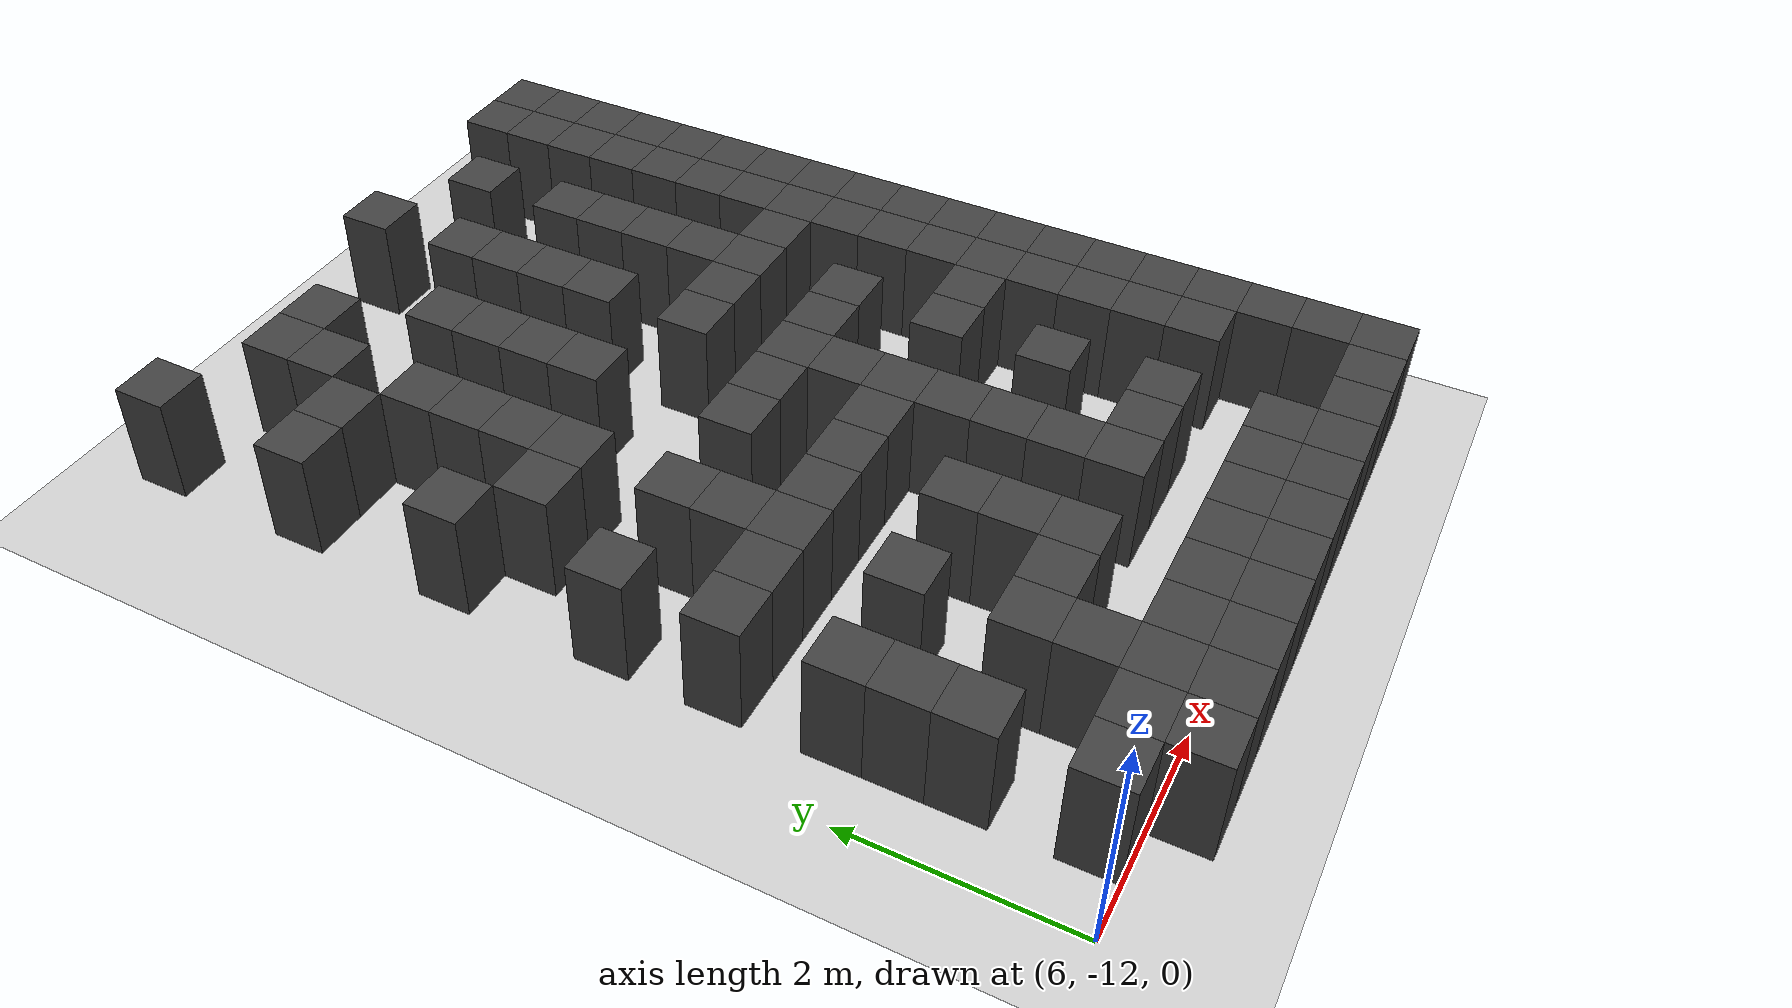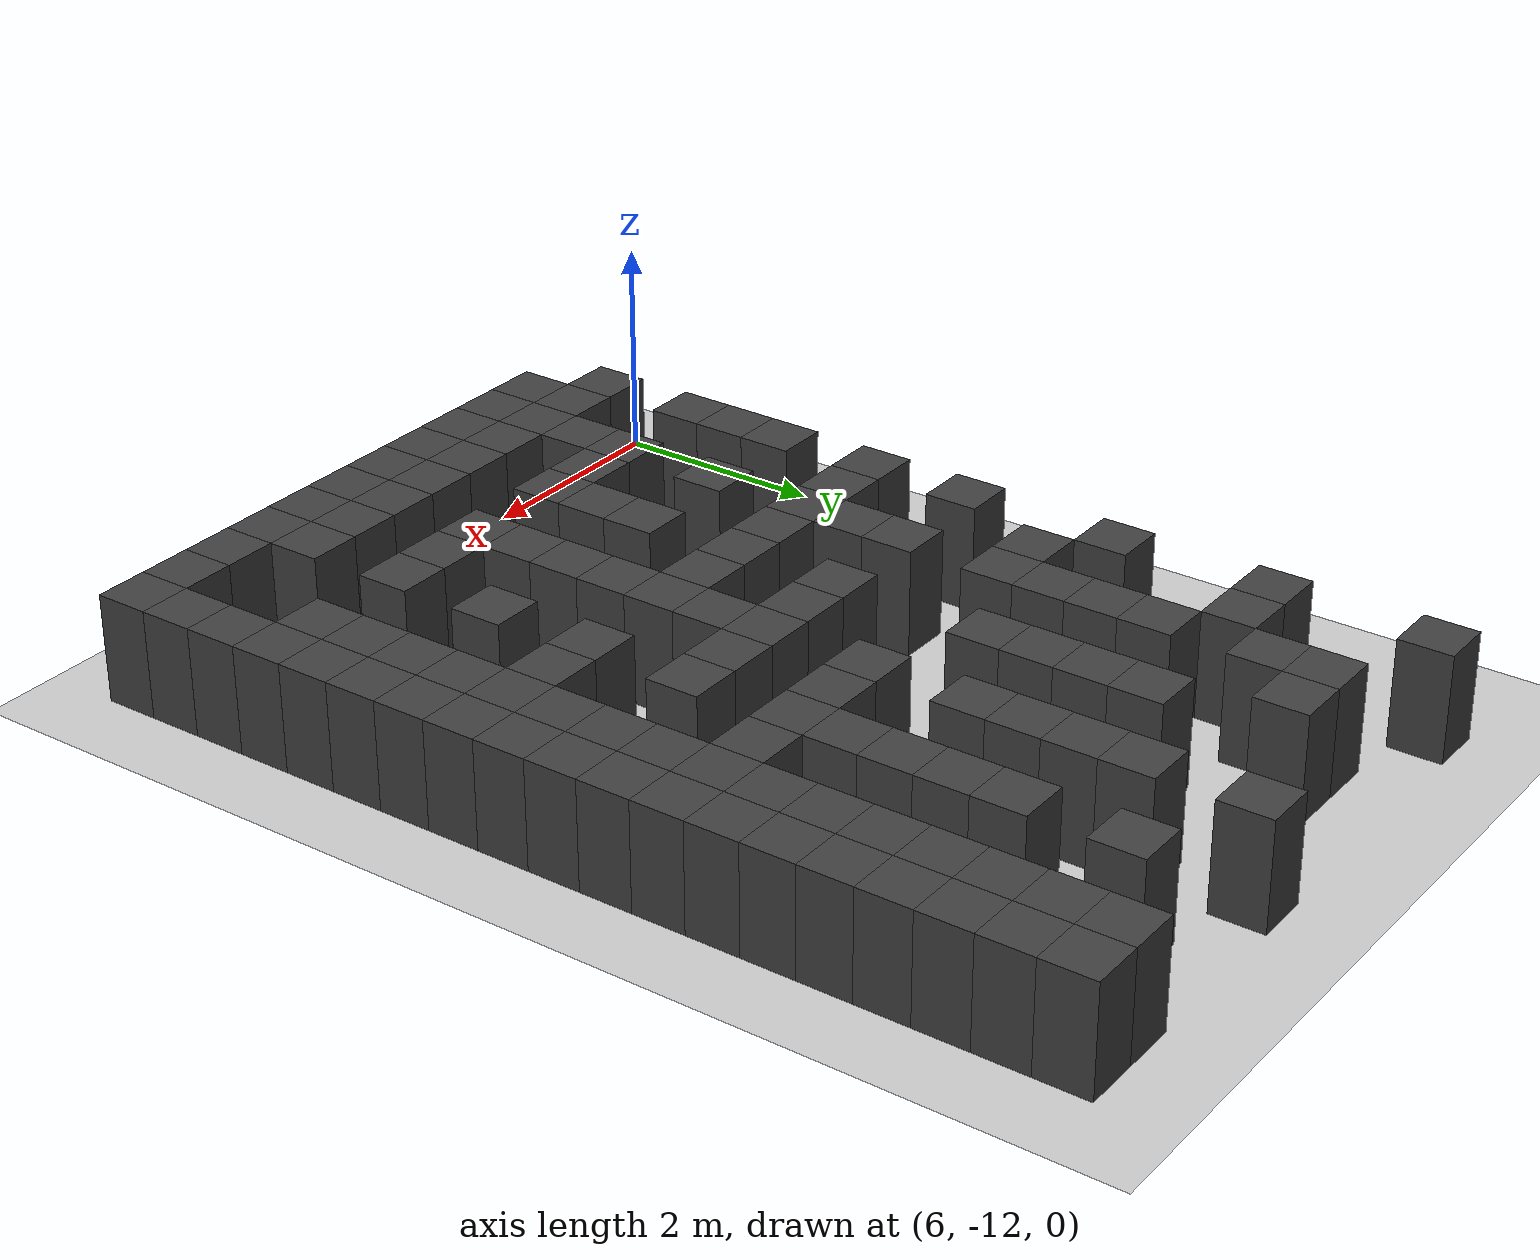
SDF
<sdf version="1.7">
 <world name="map_15293">
  <model name="ground_plane">
   <static>true</static>
   <link name="link">
    <collision name="collision">
     <geometry><plane><normal>0 0 1</normal><size>200 200</size></plane></geometry>
    </collision>
    <visual name="visual">
     <geometry><plane><normal>0 0 1</normal><size>200 200</size></plane></geometry>
     <material><ambient>0.8 0.8 0.8 1</ambient><diffuse>0.8 0.8 0.8 1</diffuse></material>
    </visual>
   </link>
  </model>
  <model name="maze_environment">
   <static>true</static>
   <link name="wall_746">
    <pose>6.750 -3.250 0.500 0 0 0</pose>
    <collision name="col"><geometry><box><size>0.5 0.5 1.0</size></box></geometry></collision>
    <visual name="vis">
     <geometry><box><size>0.5 0.5 1.0</size></box></geometry>
     <material><ambient>0.15 0.15 0.15 1</ambient><diffuse>0.25 0.25 0.25 1</diffuse></material>
    </visual>
   </link>
   <link name="wall_747">
    <pose>9.750 -3.250 0.500 0 0 0</pose>
    <collision name="col"><geometry><box><size>0.5 0.5 1.0</size></box></geometry></collision>
    <visual name="vis">
     <geometry><box><size>0.5 0.5 1.0</size></box></geometry>
     <material><ambient>0.15 0.15 0.15 1</ambient><diffuse>0.25 0.25 0.25 1</diffuse></material>
    </visual>
   </link>
   <link name="wall_748">
    <pose>11.750 -3.250 0.500 0 0 0</pose>
    <collision name="col"><geometry><box><size>0.5 0.5 1.0</size></box></geometry></collision>
    <visual name="vis">
     <geometry><box><size>0.5 0.5 1.0</size></box></geometry>
     <material><ambient>0.15 0.15 0.15 1</ambient><diffuse>0.25 0.25 0.25 1</diffuse></material>
    </visual>
   </link>
   <link name="wall_749">
    <pose>12.250 -3.250 0.500 0 0 0</pose>
    <collision name="col"><geometry><box><size>0.5 0.5 1.0</size></box></geometry></collision>
    <visual name="vis">
     <geometry><box><size>0.5 0.5 1.0</size></box></geometry>
     <material><ambient>0.15 0.15 0.15 1</ambient><diffuse>0.25 0.25 0.25 1</diffuse></material>
    </visual>
   </link>
   <link name="wall_776">
    <pose>7.750 -3.750 0.500 0 0 0</pose>
    <collision name="col"><geometry><box><size>0.5 0.5 1.0</size></box></geometry></collision>
    <visual name="vis">
     <geometry><box><size>0.5 0.5 1.0</size></box></geometry>
     <material><ambient>0.15 0.15 0.15 1</ambient><diffuse>0.25 0.25 0.25 1</diffuse></material>
    </visual>
   </link>
   <link name="wall_777">
    <pose>8.250 -3.750 0.500 0 0 0</pose>
    <collision name="col"><geometry><box><size>0.5 0.5 1.0</size></box></geometry></collision>
    <visual name="vis">
     <geometry><box><size>0.5 0.5 1.0</size></box></geometry>
     <material><ambient>0.15 0.15 0.15 1</ambient><diffuse>0.25 0.25 0.25 1</diffuse></material>
    </visual>
   </link>
   <link name="wall_778">
    <pose>10.750 -3.750 0.500 0 0 0</pose>
    <collision name="col"><geometry><box><size>0.5 0.5 1.0</size></box></geometry></collision>
    <visual name="vis">
     <geometry><box><size>0.5 0.5 1.0</size></box></geometry>
     <material><ambient>0.15 0.15 0.15 1</ambient><diffuse>0.25 0.25 0.25 1</diffuse></material>
    </visual>
   </link>
   <link name="wall_779">
    <pose>11.750 -3.750 0.500 0 0 0</pose>
    <collision name="col"><geometry><box><size>0.5 0.5 1.0</size></box></geometry></collision>
    <visual name="vis">
     <geometry><box><size>0.5 0.5 1.0</size></box></geometry>
     <material><ambient>0.15 0.15 0.15 1</ambient><diffuse>0.25 0.25 0.25 1</diffuse></material>
    </visual>
   </link>
   <link name="wall_780">
    <pose>12.250 -3.750 0.500 0 0 0</pose>
    <collision name="col"><geometry><box><size>0.5 0.5 1.0</size></box></geometry></collision>
    <visual name="vis">
     <geometry><box><size>0.5 0.5 1.0</size></box></geometry>
     <material><ambient>0.15 0.15 0.15 1</ambient><diffuse>0.25 0.25 0.25 1</diffuse></material>
    </visual>
   </link>
   <link name="wall_788">
    <pose>7.750 -4.250 0.500 0 0 0</pose>
    <collision name="col"><geometry><box><size>0.5 0.5 1.0</size></box></geometry></collision>
    <visual name="vis">
     <geometry><box><size>0.5 0.5 1.0</size></box></geometry>
     <material><ambient>0.15 0.15 0.15 1</ambient><diffuse>0.25 0.25 0.25 1</diffuse></material>
    </visual>
   </link>
   <link name="wall_789">
    <pose>9.750 -4.250 0.500 0 0 0</pose>
    <collision name="col"><geometry><box><size>0.5 0.5 1.0</size></box></geometry></collision>
    <visual name="vis">
     <geometry><box><size>0.5 0.5 1.0</size></box></geometry>
     <material><ambient>0.15 0.15 0.15 1</ambient><diffuse>0.25 0.25 0.25 1</diffuse></material>
    </visual>
   </link>
   <link name="wall_790">
    <pose>11.750 -4.250 0.500 0 0 0</pose>
    <collision name="col"><geometry><box><size>0.5 0.5 1.0</size></box></geometry></collision>
    <visual name="vis">
     <geometry><box><size>0.5 0.5 1.0</size></box></geometry>
     <material><ambient>0.15 0.15 0.15 1</ambient><diffuse>0.25 0.25 0.25 1</diffuse></material>
    </visual>
   </link>
   <link name="wall_791">
    <pose>12.250 -4.250 0.500 0 0 0</pose>
    <collision name="col"><geometry><box><size>0.5 0.5 1.0</size></box></geometry></collision>
    <visual name="vis">
     <geometry><box><size>0.5 0.5 1.0</size></box></geometry>
     <material><ambient>0.15 0.15 0.15 1</ambient><diffuse>0.25 0.25 0.25 1</diffuse></material>
    </visual>
   </link>
   <link name="wall_812">
    <pose>6.750 -4.750 0.500 0 0 0</pose>
    <collision name="col"><geometry><box><size>0.5 0.5 1.0</size></box></geometry></collision>
    <visual name="vis">
     <geometry><box><size>0.5 0.5 1.0</size></box></geometry>
     <material><ambient>0.15 0.15 0.15 1</ambient><diffuse>0.25 0.25 0.25 1</diffuse></material>
    </visual>
   </link>
   <link name="wall_813">
    <pose>7.250 -4.750 0.500 0 0 0</pose>
    <collision name="col"><geometry><box><size>0.5 0.5 1.0</size></box></geometry></collision>
    <visual name="vis">
     <geometry><box><size>0.5 0.5 1.0</size></box></geometry>
     <material><ambient>0.15 0.15 0.15 1</ambient><diffuse>0.25 0.25 0.25 1</diffuse></material>
    </visual>
   </link>
   <link name="wall_814">
    <pose>8.750 -4.750 0.500 0 0 0</pose>
    <collision name="col"><geometry><box><size>0.5 0.5 1.0</size></box></geometry></collision>
    <visual name="vis">
     <geometry><box><size>0.5 0.5 1.0</size></box></geometry>
     <material><ambient>0.15 0.15 0.15 1</ambient><diffuse>0.25 0.25 0.25 1</diffuse></material>
    </visual>
   </link>
   <link name="wall_815">
    <pose>9.750 -4.750 0.500 0 0 0</pose>
    <collision name="col"><geometry><box><size>0.5 0.5 1.0</size></box></geometry></collision>
    <visual name="vis">
     <geometry><box><size>0.5 0.5 1.0</size></box></geometry>
     <material><ambient>0.15 0.15 0.15 1</ambient><diffuse>0.25 0.25 0.25 1</diffuse></material>
    </visual>
   </link>
   <link name="wall_816">
    <pose>10.750 -4.750 0.500 0 0 0</pose>
    <collision name="col"><geometry><box><size>0.5 0.5 1.0</size></box></geometry></collision>
    <visual name="vis">
     <geometry><box><size>0.5 0.5 1.0</size></box></geometry>
     <material><ambient>0.15 0.15 0.15 1</ambient><diffuse>0.25 0.25 0.25 1</diffuse></material>
    </visual>
   </link>
   <link name="wall_817">
    <pose>11.750 -4.750 0.500 0 0 0</pose>
    <collision name="col"><geometry><box><size>0.5 0.5 1.0</size></box></geometry></collision>
    <visual name="vis">
     <geometry><box><size>0.5 0.5 1.0</size></box></geometry>
     <material><ambient>0.15 0.15 0.15 1</ambient><diffuse>0.25 0.25 0.25 1</diffuse></material>
    </visual>
   </link>
   <link name="wall_818">
    <pose>12.250 -4.750 0.500 0 0 0</pose>
    <collision name="col"><geometry><box><size>0.5 0.5 1.0</size></box></geometry></collision>
    <visual name="vis">
     <geometry><box><size>0.5 0.5 1.0</size></box></geometry>
     <material><ambient>0.15 0.15 0.15 1</ambient><diffuse>0.25 0.25 0.25 1</diffuse></material>
    </visual>
   </link>
   <link name="wall_829">
    <pose>7.750 -5.250 0.500 0 0 0</pose>
    <collision name="col"><geometry><box><size>0.5 0.5 1.0</size></box></geometry></collision>
    <visual name="vis">
     <geometry><box><size>0.5 0.5 1.0</size></box></geometry>
     <material><ambient>0.15 0.15 0.15 1</ambient><diffuse>0.25 0.25 0.25 1</diffuse></material>
    </visual>
   </link>
   <link name="wall_830">
    <pose>8.750 -5.250 0.500 0 0 0</pose>
    <collision name="col"><geometry><box><size>0.5 0.5 1.0</size></box></geometry></collision>
    <visual name="vis">
     <geometry><box><size>0.5 0.5 1.0</size></box></geometry>
     <material><ambient>0.15 0.15 0.15 1</ambient><diffuse>0.25 0.25 0.25 1</diffuse></material>
    </visual>
   </link>
   <link name="wall_831">
    <pose>9.750 -5.250 0.500 0 0 0</pose>
    <collision name="col"><geometry><box><size>0.5 0.5 1.0</size></box></geometry></collision>
    <visual name="vis">
     <geometry><box><size>0.5 0.5 1.0</size></box></geometry>
     <material><ambient>0.15 0.15 0.15 1</ambient><diffuse>0.25 0.25 0.25 1</diffuse></material>
    </visual>
   </link>
   <link name="wall_832">
    <pose>10.750 -5.250 0.500 0 0 0</pose>
    <collision name="col"><geometry><box><size>0.5 0.5 1.0</size></box></geometry></collision>
    <visual name="vis">
     <geometry><box><size>0.5 0.5 1.0</size></box></geometry>
     <material><ambient>0.15 0.15 0.15 1</ambient><diffuse>0.25 0.25 0.25 1</diffuse></material>
    </visual>
   </link>
   <link name="wall_833">
    <pose>11.750 -5.250 0.500 0 0 0</pose>
    <collision name="col"><geometry><box><size>0.5 0.5 1.0</size></box></geometry></collision>
    <visual name="vis">
     <geometry><box><size>0.5 0.5 1.0</size></box></geometry>
     <material><ambient>0.15 0.15 0.15 1</ambient><diffuse>0.25 0.25 0.25 1</diffuse></material>
    </visual>
   </link>
   <link name="wall_834">
    <pose>12.250 -5.250 0.500 0 0 0</pose>
    <collision name="col"><geometry><box><size>0.5 0.5 1.0</size></box></geometry></collision>
    <visual name="vis">
     <geometry><box><size>0.5 0.5 1.0</size></box></geometry>
     <material><ambient>0.15 0.15 0.15 1</ambient><diffuse>0.25 0.25 0.25 1</diffuse></material>
    </visual>
   </link>
   <link name="wall_862">
    <pose>7.750 -5.750 0.500 0 0 0</pose>
    <collision name="col"><geometry><box><size>0.5 0.5 1.0</size></box></geometry></collision>
    <visual name="vis">
     <geometry><box><size>0.5 0.5 1.0</size></box></geometry>
     <material><ambient>0.15 0.15 0.15 1</ambient><diffuse>0.25 0.25 0.25 1</diffuse></material>
    </visual>
   </link>
   <link name="wall_863">
    <pose>8.750 -5.750 0.500 0 0 0</pose>
    <collision name="col"><geometry><box><size>0.5 0.5 1.0</size></box></geometry></collision>
    <visual name="vis">
     <geometry><box><size>0.5 0.5 1.0</size></box></geometry>
     <material><ambient>0.15 0.15 0.15 1</ambient><diffuse>0.25 0.25 0.25 1</diffuse></material>
    </visual>
   </link>
   <link name="wall_864">
    <pose>9.750 -5.750 0.500 0 0 0</pose>
    <collision name="col"><geometry><box><size>0.5 0.5 1.0</size></box></geometry></collision>
    <visual name="vis">
     <geometry><box><size>0.5 0.5 1.0</size></box></geometry>
     <material><ambient>0.15 0.15 0.15 1</ambient><diffuse>0.25 0.25 0.25 1</diffuse></material>
    </visual>
   </link>
   <link name="wall_865">
    <pose>10.750 -5.750 0.500 0 0 0</pose>
    <collision name="col"><geometry><box><size>0.5 0.5 1.0</size></box></geometry></collision>
    <visual name="vis">
     <geometry><box><size>0.5 0.5 1.0</size></box></geometry>
     <material><ambient>0.15 0.15 0.15 1</ambient><diffuse>0.25 0.25 0.25 1</diffuse></material>
    </visual>
   </link>
   <link name="wall_866">
    <pose>11.750 -5.750 0.500 0 0 0</pose>
    <collision name="col"><geometry><box><size>0.5 0.5 1.0</size></box></geometry></collision>
    <visual name="vis">
     <geometry><box><size>0.5 0.5 1.0</size></box></geometry>
     <material><ambient>0.15 0.15 0.15 1</ambient><diffuse>0.25 0.25 0.25 1</diffuse></material>
    </visual>
   </link>
   <link name="wall_867">
    <pose>12.250 -5.750 0.500 0 0 0</pose>
    <collision name="col"><geometry><box><size>0.5 0.5 1.0</size></box></geometry></collision>
    <visual name="vis">
     <geometry><box><size>0.5 0.5 1.0</size></box></geometry>
     <material><ambient>0.15 0.15 0.15 1</ambient><diffuse>0.25 0.25 0.25 1</diffuse></material>
    </visual>
   </link>
   <link name="wall_874">
    <pose>6.750 -6.250 0.500 0 0 0</pose>
    <collision name="col"><geometry><box><size>0.5 0.5 1.0</size></box></geometry></collision>
    <visual name="vis">
     <geometry><box><size>0.5 0.5 1.0</size></box></geometry>
     <material><ambient>0.15 0.15 0.15 1</ambient><diffuse>0.25 0.25 0.25 1</diffuse></material>
    </visual>
   </link>
   <link name="wall_875">
    <pose>7.750 -6.250 0.500 0 0 0</pose>
    <collision name="col"><geometry><box><size>0.5 0.5 1.0</size></box></geometry></collision>
    <visual name="vis">
     <geometry><box><size>0.5 0.5 1.0</size></box></geometry>
     <material><ambient>0.15 0.15 0.15 1</ambient><diffuse>0.25 0.25 0.25 1</diffuse></material>
    </visual>
   </link>
   <link name="wall_876">
    <pose>8.750 -6.250 0.500 0 0 0</pose>
    <collision name="col"><geometry><box><size>0.5 0.5 1.0</size></box></geometry></collision>
    <visual name="vis">
     <geometry><box><size>0.5 0.5 1.0</size></box></geometry>
     <material><ambient>0.15 0.15 0.15 1</ambient><diffuse>0.25 0.25 0.25 1</diffuse></material>
    </visual>
   </link>
   <link name="wall_877">
    <pose>10.750 -6.250 0.500 0 0 0</pose>
    <collision name="col"><geometry><box><size>0.5 0.5 1.0</size></box></geometry></collision>
    <visual name="vis">
     <geometry><box><size>0.5 0.5 1.0</size></box></geometry>
     <material><ambient>0.15 0.15 0.15 1</ambient><diffuse>0.25 0.25 0.25 1</diffuse></material>
    </visual>
   </link>
   <link name="wall_878">
    <pose>11.750 -6.250 0.500 0 0 0</pose>
    <collision name="col"><geometry><box><size>0.5 0.5 1.0</size></box></geometry></collision>
    <visual name="vis">
     <geometry><box><size>0.5 0.5 1.0</size></box></geometry>
     <material><ambient>0.15 0.15 0.15 1</ambient><diffuse>0.25 0.25 0.25 1</diffuse></material>
    </visual>
   </link>
   <link name="wall_879">
    <pose>12.250 -6.250 0.500 0 0 0</pose>
    <collision name="col"><geometry><box><size>0.5 0.5 1.0</size></box></geometry></collision>
    <visual name="vis">
     <geometry><box><size>0.5 0.5 1.0</size></box></geometry>
     <material><ambient>0.15 0.15 0.15 1</ambient><diffuse>0.25 0.25 0.25 1</diffuse></material>
    </visual>
   </link>
   <link name="wall_906">
    <pose>7.250 -6.750 0.500 0 0 0</pose>
    <collision name="col"><geometry><box><size>0.5 0.5 1.0</size></box></geometry></collision>
    <visual name="vis">
     <geometry><box><size>0.5 0.5 1.0</size></box></geometry>
     <material><ambient>0.15 0.15 0.15 1</ambient><diffuse>0.25 0.25 0.25 1</diffuse></material>
    </visual>
   </link>
   <link name="wall_907">
    <pose>7.750 -6.750 0.500 0 0 0</pose>
    <collision name="col"><geometry><box><size>0.5 0.5 1.0</size></box></geometry></collision>
    <visual name="vis">
     <geometry><box><size>0.5 0.5 1.0</size></box></geometry>
     <material><ambient>0.15 0.15 0.15 1</ambient><diffuse>0.25 0.25 0.25 1</diffuse></material>
    </visual>
   </link>
   <link name="wall_908">
    <pose>9.750 -6.750 0.500 0 0 0</pose>
    <collision name="col"><geometry><box><size>0.5 0.5 1.0</size></box></geometry></collision>
    <visual name="vis">
     <geometry><box><size>0.5 0.5 1.0</size></box></geometry>
     <material><ambient>0.15 0.15 0.15 1</ambient><diffuse>0.25 0.25 0.25 1</diffuse></material>
    </visual>
   </link>
   <link name="wall_909">
    <pose>10.250 -6.750 0.500 0 0 0</pose>
    <collision name="col"><geometry><box><size>0.5 0.5 1.0</size></box></geometry></collision>
    <visual name="vis">
     <geometry><box><size>0.5 0.5 1.0</size></box></geometry>
     <material><ambient>0.15 0.15 0.15 1</ambient><diffuse>0.25 0.25 0.25 1</diffuse></material>
    </visual>
   </link>
   <link name="wall_910">
    <pose>10.750 -6.750 0.500 0 0 0</pose>
    <collision name="col"><geometry><box><size>0.5 0.5 1.0</size></box></geometry></collision>
    <visual name="vis">
     <geometry><box><size>0.5 0.5 1.0</size></box></geometry>
     <material><ambient>0.15 0.15 0.15 1</ambient><diffuse>0.25 0.25 0.25 1</diffuse></material>
    </visual>
   </link>
   <link name="wall_911">
    <pose>11.250 -6.750 0.500 0 0 0</pose>
    <collision name="col"><geometry><box><size>0.5 0.5 1.0</size></box></geometry></collision>
    <visual name="vis">
     <geometry><box><size>0.5 0.5 1.0</size></box></geometry>
     <material><ambient>0.15 0.15 0.15 1</ambient><diffuse>0.25 0.25 0.25 1</diffuse></material>
    </visual>
   </link>
   <link name="wall_912">
    <pose>11.750 -6.750 0.500 0 0 0</pose>
    <collision name="col"><geometry><box><size>0.5 0.5 1.0</size></box></geometry></collision>
    <visual name="vis">
     <geometry><box><size>0.5 0.5 1.0</size></box></geometry>
     <material><ambient>0.15 0.15 0.15 1</ambient><diffuse>0.25 0.25 0.25 1</diffuse></material>
    </visual>
   </link>
   <link name="wall_913">
    <pose>12.250 -6.750 0.500 0 0 0</pose>
    <collision name="col"><geometry><box><size>0.5 0.5 1.0</size></box></geometry></collision>
    <visual name="vis">
     <geometry><box><size>0.5 0.5 1.0</size></box></geometry>
     <material><ambient>0.15 0.15 0.15 1</ambient><diffuse>0.25 0.25 0.25 1</diffuse></material>
    </visual>
   </link>
   <link name="wall_924">
    <pose>11.750 -7.250 0.500 0 0 0</pose>
    <collision name="col"><geometry><box><size>0.5 0.5 1.0</size></box></geometry></collision>
    <visual name="vis">
     <geometry><box><size>0.5 0.5 1.0</size></box></geometry>
     <material><ambient>0.15 0.15 0.15 1</ambient><diffuse>0.25 0.25 0.25 1</diffuse></material>
    </visual>
   </link>
   <link name="wall_925">
    <pose>12.250 -7.250 0.500 0 0 0</pose>
    <collision name="col"><geometry><box><size>0.5 0.5 1.0</size></box></geometry></collision>
    <visual name="vis">
     <geometry><box><size>0.5 0.5 1.0</size></box></geometry>
     <material><ambient>0.15 0.15 0.15 1</ambient><diffuse>0.25 0.25 0.25 1</diffuse></material>
    </visual>
   </link>
   <link name="wall_953">
    <pose>6.750 -7.750 0.500 0 0 0</pose>
    <collision name="col"><geometry><box><size>0.5 0.5 1.0</size></box></geometry></collision>
    <visual name="vis">
     <geometry><box><size>0.5 0.5 1.0</size></box></geometry>
     <material><ambient>0.15 0.15 0.15 1</ambient><diffuse>0.25 0.25 0.25 1</diffuse></material>
    </visual>
   </link>
   <link name="wall_954">
    <pose>7.750 -7.750 0.500 0 0 0</pose>
    <collision name="col"><geometry><box><size>0.5 0.5 1.0</size></box></geometry></collision>
    <visual name="vis">
     <geometry><box><size>0.5 0.5 1.0</size></box></geometry>
     <material><ambient>0.15 0.15 0.15 1</ambient><diffuse>0.25 0.25 0.25 1</diffuse></material>
    </visual>
   </link>
   <link name="wall_955">
    <pose>8.750 -7.750 0.500 0 0 0</pose>
    <collision name="col"><geometry><box><size>0.5 0.5 1.0</size></box></geometry></collision>
    <visual name="vis">
     <geometry><box><size>0.5 0.5 1.0</size></box></geometry>
     <material><ambient>0.15 0.15 0.15 1</ambient><diffuse>0.25 0.25 0.25 1</diffuse></material>
    </visual>
   </link>
   <link name="wall_956">
    <pose>9.250 -7.750 0.500 0 0 0</pose>
    <collision name="col"><geometry><box><size>0.5 0.5 1.0</size></box></geometry></collision>
    <visual name="vis">
     <geometry><box><size>0.5 0.5 1.0</size></box></geometry>
     <material><ambient>0.15 0.15 0.15 1</ambient><diffuse>0.25 0.25 0.25 1</diffuse></material>
    </visual>
   </link>
   <link name="wall_957">
    <pose>9.750 -7.750 0.500 0 0 0</pose>
    <collision name="col"><geometry><box><size>0.5 0.5 1.0</size></box></geometry></collision>
    <visual name="vis">
     <geometry><box><size>0.5 0.5 1.0</size></box></geometry>
     <material><ambient>0.15 0.15 0.15 1</ambient><diffuse>0.25 0.25 0.25 1</diffuse></material>
    </visual>
   </link>
   <link name="wall_958">
    <pose>10.250 -7.750 0.500 0 0 0</pose>
    <collision name="col"><geometry><box><size>0.5 0.5 1.0</size></box></geometry></collision>
    <visual name="vis">
     <geometry><box><size>0.5 0.5 1.0</size></box></geometry>
     <material><ambient>0.15 0.15 0.15 1</ambient><diffuse>0.25 0.25 0.25 1</diffuse></material>
    </visual>
   </link>
   <link name="wall_959">
    <pose>10.750 -7.750 0.500 0 0 0</pose>
    <collision name="col"><geometry><box><size>0.5 0.5 1.0</size></box></geometry></collision>
    <visual name="vis">
     <geometry><box><size>0.5 0.5 1.0</size></box></geometry>
     <material><ambient>0.15 0.15 0.15 1</ambient><diffuse>0.25 0.25 0.25 1</diffuse></material>
    </visual>
   </link>
   <link name="wall_960">
    <pose>11.750 -7.750 0.500 0 0 0</pose>
    <collision name="col"><geometry><box><size>0.5 0.5 1.0</size></box></geometry></collision>
    <visual name="vis">
     <geometry><box><size>0.5 0.5 1.0</size></box></geometry>
     <material><ambient>0.15 0.15 0.15 1</ambient><diffuse>0.25 0.25 0.25 1</diffuse></material>
    </visual>
   </link>
   <link name="wall_961">
    <pose>12.250 -7.750 0.500 0 0 0</pose>
    <collision name="col"><geometry><box><size>0.5 0.5 1.0</size></box></geometry></collision>
    <visual name="vis">
     <geometry><box><size>0.5 0.5 1.0</size></box></geometry>
     <material><ambient>0.15 0.15 0.15 1</ambient><diffuse>0.25 0.25 0.25 1</diffuse></material>
    </visual>
   </link>
   <link name="wall_971">
    <pose>7.750 -8.250 0.500 0 0 0</pose>
    <collision name="col"><geometry><box><size>0.5 0.5 1.0</size></box></geometry></collision>
    <visual name="vis">
     <geometry><box><size>0.5 0.5 1.0</size></box></geometry>
     <material><ambient>0.15 0.15 0.15 1</ambient><diffuse>0.25 0.25 0.25 1</diffuse></material>
    </visual>
   </link>
   <link name="wall_972">
    <pose>9.750 -8.250 0.500 0 0 0</pose>
    <collision name="col"><geometry><box><size>0.5 0.5 1.0</size></box></geometry></collision>
    <visual name="vis">
     <geometry><box><size>0.5 0.5 1.0</size></box></geometry>
     <material><ambient>0.15 0.15 0.15 1</ambient><diffuse>0.25 0.25 0.25 1</diffuse></material>
    </visual>
   </link>
   <link name="wall_973">
    <pose>11.750 -8.250 0.500 0 0 0</pose>
    <collision name="col"><geometry><box><size>0.5 0.5 1.0</size></box></geometry></collision>
    <visual name="vis">
     <geometry><box><size>0.5 0.5 1.0</size></box></geometry>
     <material><ambient>0.15 0.15 0.15 1</ambient><diffuse>0.25 0.25 0.25 1</diffuse></material>
    </visual>
   </link>
   <link name="wall_974">
    <pose>12.250 -8.250 0.500 0 0 0</pose>
    <collision name="col"><geometry><box><size>0.5 0.5 1.0</size></box></geometry></collision>
    <visual name="vis">
     <geometry><box><size>0.5 0.5 1.0</size></box></geometry>
     <material><ambient>0.15 0.15 0.15 1</ambient><diffuse>0.25 0.25 0.25 1</diffuse></material>
    </visual>
   </link>
   <link name="wall_999">
    <pose>6.750 -8.750 0.500 0 0 0</pose>
    <collision name="col"><geometry><box><size>0.5 0.5 1.0</size></box></geometry></collision>
    <visual name="vis">
     <geometry><box><size>0.5 0.5 1.0</size></box></geometry>
     <material><ambient>0.15 0.15 0.15 1</ambient><diffuse>0.25 0.25 0.25 1</diffuse></material>
    </visual>
   </link>
   <link name="wall_1000">
    <pose>7.250 -8.750 0.500 0 0 0</pose>
    <collision name="col"><geometry><box><size>0.5 0.5 1.0</size></box></geometry></collision>
    <visual name="vis">
     <geometry><box><size>0.5 0.5 1.0</size></box></geometry>
     <material><ambient>0.15 0.15 0.15 1</ambient><diffuse>0.25 0.25 0.25 1</diffuse></material>
    </visual>
   </link>
   <link name="wall_1001">
    <pose>7.750 -8.750 0.500 0 0 0</pose>
    <collision name="col"><geometry><box><size>0.5 0.5 1.0</size></box></geometry></collision>
    <visual name="vis">
     <geometry><box><size>0.5 0.5 1.0</size></box></geometry>
     <material><ambient>0.15 0.15 0.15 1</ambient><diffuse>0.25 0.25 0.25 1</diffuse></material>
    </visual>
   </link>
   <link name="wall_1002">
    <pose>8.250 -8.750 0.500 0 0 0</pose>
    <collision name="col"><geometry><box><size>0.5 0.5 1.0</size></box></geometry></collision>
    <visual name="vis">
     <geometry><box><size>0.5 0.5 1.0</size></box></geometry>
     <material><ambient>0.15 0.15 0.15 1</ambient><diffuse>0.25 0.25 0.25 1</diffuse></material>
    </visual>
   </link>
   <link name="wall_1003">
    <pose>8.750 -8.750 0.500 0 0 0</pose>
    <collision name="col"><geometry><box><size>0.5 0.5 1.0</size></box></geometry></collision>
    <visual name="vis">
     <geometry><box><size>0.5 0.5 1.0</size></box></geometry>
     <material><ambient>0.15 0.15 0.15 1</ambient><diffuse>0.25 0.25 0.25 1</diffuse></material>
    </visual>
   </link>
   <link name="wall_1004">
    <pose>9.250 -8.750 0.500 0 0 0</pose>
    <collision name="col"><geometry><box><size>0.5 0.5 1.0</size></box></geometry></collision>
    <visual name="vis">
     <geometry><box><size>0.5 0.5 1.0</size></box></geometry>
     <material><ambient>0.15 0.15 0.15 1</ambient><diffuse>0.25 0.25 0.25 1</diffuse></material>
    </visual>
   </link>
   <link name="wall_1005">
    <pose>9.750 -8.750 0.500 0 0 0</pose>
    <collision name="col"><geometry><box><size>0.5 0.5 1.0</size></box></geometry></collision>
    <visual name="vis">
     <geometry><box><size>0.5 0.5 1.0</size></box></geometry>
     <material><ambient>0.15 0.15 0.15 1</ambient><diffuse>0.25 0.25 0.25 1</diffuse></material>
    </visual>
   </link>
   <link name="wall_1006">
    <pose>10.750 -8.750 0.500 0 0 0</pose>
    <collision name="col"><geometry><box><size>0.5 0.5 1.0</size></box></geometry></collision>
    <visual name="vis">
     <geometry><box><size>0.5 0.5 1.0</size></box></geometry>
     <material><ambient>0.15 0.15 0.15 1</ambient><diffuse>0.25 0.25 0.25 1</diffuse></material>
    </visual>
   </link>
   <link name="wall_1007">
    <pose>11.250 -8.750 0.500 0 0 0</pose>
    <collision name="col"><geometry><box><size>0.5 0.5 1.0</size></box></geometry></collision>
    <visual name="vis">
     <geometry><box><size>0.5 0.5 1.0</size></box></geometry>
     <material><ambient>0.15 0.15 0.15 1</ambient><diffuse>0.25 0.25 0.25 1</diffuse></material>
    </visual>
   </link>
   <link name="wall_1008">
    <pose>11.750 -8.750 0.500 0 0 0</pose>
    <collision name="col"><geometry><box><size>0.5 0.5 1.0</size></box></geometry></collision>
    <visual name="vis">
     <geometry><box><size>0.5 0.5 1.0</size></box></geometry>
     <material><ambient>0.15 0.15 0.15 1</ambient><diffuse>0.25 0.25 0.25 1</diffuse></material>
    </visual>
   </link>
   <link name="wall_1009">
    <pose>12.250 -8.750 0.500 0 0 0</pose>
    <collision name="col"><geometry><box><size>0.5 0.5 1.0</size></box></geometry></collision>
    <visual name="vis">
     <geometry><box><size>0.5 0.5 1.0</size></box></geometry>
     <material><ambient>0.15 0.15 0.15 1</ambient><diffuse>0.25 0.25 0.25 1</diffuse></material>
    </visual>
   </link>
   <link name="wall_1020">
    <pose>9.750 -9.250 0.500 0 0 0</pose>
    <collision name="col"><geometry><box><size>0.5 0.5 1.0</size></box></geometry></collision>
    <visual name="vis">
     <geometry><box><size>0.5 0.5 1.0</size></box></geometry>
     <material><ambient>0.15 0.15 0.15 1</ambient><diffuse>0.25 0.25 0.25 1</diffuse></material>
    </visual>
   </link>
   <link name="wall_1021">
    <pose>11.750 -9.250 0.500 0 0 0</pose>
    <collision name="col"><geometry><box><size>0.5 0.5 1.0</size></box></geometry></collision>
    <visual name="vis">
     <geometry><box><size>0.5 0.5 1.0</size></box></geometry>
     <material><ambient>0.15 0.15 0.15 1</ambient><diffuse>0.25 0.25 0.25 1</diffuse></material>
    </visual>
   </link>
   <link name="wall_1022">
    <pose>12.250 -9.250 0.500 0 0 0</pose>
    <collision name="col"><geometry><box><size>0.5 0.5 1.0</size></box></geometry></collision>
    <visual name="vis">
     <geometry><box><size>0.5 0.5 1.0</size></box></geometry>
     <material><ambient>0.15 0.15 0.15 1</ambient><diffuse>0.25 0.25 0.25 1</diffuse></material>
    </visual>
   </link>
   <link name="wall_1047">
    <pose>6.750 -9.750 0.500 0 0 0</pose>
    <collision name="col"><geometry><box><size>0.5 0.5 1.0</size></box></geometry></collision>
    <visual name="vis">
     <geometry><box><size>0.5 0.5 1.0</size></box></geometry>
     <material><ambient>0.15 0.15 0.15 1</ambient><diffuse>0.25 0.25 0.25 1</diffuse></material>
    </visual>
   </link>
   <link name="wall_1048">
    <pose>7.750 -9.750 0.500 0 0 0</pose>
    <collision name="col"><geometry><box><size>0.5 0.5 1.0</size></box></geometry></collision>
    <visual name="vis">
     <geometry><box><size>0.5 0.5 1.0</size></box></geometry>
     <material><ambient>0.15 0.15 0.15 1</ambient><diffuse>0.25 0.25 0.25 1</diffuse></material>
    </visual>
   </link>
   <link name="wall_1049">
    <pose>8.750 -9.750 0.500 0 0 0</pose>
    <collision name="col"><geometry><box><size>0.5 0.5 1.0</size></box></geometry></collision>
    <visual name="vis">
     <geometry><box><size>0.5 0.5 1.0</size></box></geometry>
     <material><ambient>0.15 0.15 0.15 1</ambient><diffuse>0.25 0.25 0.25 1</diffuse></material>
    </visual>
   </link>
   <link name="wall_1050">
    <pose>9.750 -9.750 0.500 0 0 0</pose>
    <collision name="col"><geometry><box><size>0.5 0.5 1.0</size></box></geometry></collision>
    <visual name="vis">
     <geometry><box><size>0.5 0.5 1.0</size></box></geometry>
     <material><ambient>0.15 0.15 0.15 1</ambient><diffuse>0.25 0.25 0.25 1</diffuse></material>
    </visual>
   </link>
   <link name="wall_1051">
    <pose>10.750 -9.750 0.500 0 0 0</pose>
    <collision name="col"><geometry><box><size>0.5 0.5 1.0</size></box></geometry></collision>
    <visual name="vis">
     <geometry><box><size>0.5 0.5 1.0</size></box></geometry>
     <material><ambient>0.15 0.15 0.15 1</ambient><diffuse>0.25 0.25 0.25 1</diffuse></material>
    </visual>
   </link>
   <link name="wall_1052">
    <pose>11.750 -9.750 0.500 0 0 0</pose>
    <collision name="col"><geometry><box><size>0.5 0.5 1.0</size></box></geometry></collision>
    <visual name="vis">
     <geometry><box><size>0.5 0.5 1.0</size></box></geometry>
     <material><ambient>0.15 0.15 0.15 1</ambient><diffuse>0.25 0.25 0.25 1</diffuse></material>
    </visual>
   </link>
   <link name="wall_1053">
    <pose>12.250 -9.750 0.500 0 0 0</pose>
    <collision name="col"><geometry><box><size>0.5 0.5 1.0</size></box></geometry></collision>
    <visual name="vis">
     <geometry><box><size>0.5 0.5 1.0</size></box></geometry>
     <material><ambient>0.15 0.15 0.15 1</ambient><diffuse>0.25 0.25 0.25 1</diffuse></material>
    </visual>
   </link>
   <link name="wall_1063">
    <pose>6.750 -10.250 0.500 0 0 0</pose>
    <collision name="col"><geometry><box><size>0.5 0.5 1.0</size></box></geometry></collision>
    <visual name="vis">
     <geometry><box><size>0.5 0.5 1.0</size></box></geometry>
     <material><ambient>0.15 0.15 0.15 1</ambient><diffuse>0.25 0.25 0.25 1</diffuse></material>
    </visual>
   </link>
   <link name="wall_1064">
    <pose>8.750 -10.250 0.500 0 0 0</pose>
    <collision name="col"><geometry><box><size>0.5 0.5 1.0</size></box></geometry></collision>
    <visual name="vis">
     <geometry><box><size>0.5 0.5 1.0</size></box></geometry>
     <material><ambient>0.15 0.15 0.15 1</ambient><diffuse>0.25 0.25 0.25 1</diffuse></material>
    </visual>
   </link>
   <link name="wall_1065">
    <pose>9.750 -10.250 0.500 0 0 0</pose>
    <collision name="col"><geometry><box><size>0.5 0.5 1.0</size></box></geometry></collision>
    <visual name="vis">
     <geometry><box><size>0.5 0.5 1.0</size></box></geometry>
     <material><ambient>0.15 0.15 0.15 1</ambient><diffuse>0.25 0.25 0.25 1</diffuse></material>
    </visual>
   </link>
   <link name="wall_1066">
    <pose>11.750 -10.250 0.500 0 0 0</pose>
    <collision name="col"><geometry><box><size>0.5 0.5 1.0</size></box></geometry></collision>
    <visual name="vis">
     <geometry><box><size>0.5 0.5 1.0</size></box></geometry>
     <material><ambient>0.15 0.15 0.15 1</ambient><diffuse>0.25 0.25 0.25 1</diffuse></material>
    </visual>
   </link>
   <link name="wall_1067">
    <pose>12.250 -10.250 0.500 0 0 0</pose>
    <collision name="col"><geometry><box><size>0.5 0.5 1.0</size></box></geometry></collision>
    <visual name="vis">
     <geometry><box><size>0.5 0.5 1.0</size></box></geometry>
     <material><ambient>0.15 0.15 0.15 1</ambient><diffuse>0.25 0.25 0.25 1</diffuse></material>
    </visual>
   </link>
   <link name="wall_1092">
    <pose>6.750 -10.750 0.500 0 0 0</pose>
    <collision name="col"><geometry><box><size>0.5 0.5 1.0</size></box></geometry></collision>
    <visual name="vis">
     <geometry><box><size>0.5 0.5 1.0</size></box></geometry>
     <material><ambient>0.15 0.15 0.15 1</ambient><diffuse>0.25 0.25 0.25 1</diffuse></material>
    </visual>
   </link>
   <link name="wall_1093">
    <pose>7.750 -10.750 0.500 0 0 0</pose>
    <collision name="col"><geometry><box><size>0.5 0.5 1.0</size></box></geometry></collision>
    <visual name="vis">
     <geometry><box><size>0.5 0.5 1.0</size></box></geometry>
     <material><ambient>0.15 0.15 0.15 1</ambient><diffuse>0.25 0.25 0.25 1</diffuse></material>
    </visual>
   </link>
   <link name="wall_1094">
    <pose>8.250 -10.750 0.500 0 0 0</pose>
    <collision name="col"><geometry><box><size>0.5 0.5 1.0</size></box></geometry></collision>
    <visual name="vis">
     <geometry><box><size>0.5 0.5 1.0</size></box></geometry>
     <material><ambient>0.15 0.15 0.15 1</ambient><diffuse>0.25 0.25 0.25 1</diffuse></material>
    </visual>
   </link>
   <link name="wall_1095">
    <pose>8.750 -10.750 0.500 0 0 0</pose>
    <collision name="col"><geometry><box><size>0.5 0.5 1.0</size></box></geometry></collision>
    <visual name="vis">
     <geometry><box><size>0.5 0.5 1.0</size></box></geometry>
     <material><ambient>0.15 0.15 0.15 1</ambient><diffuse>0.25 0.25 0.25 1</diffuse></material>
    </visual>
   </link>
   <link name="wall_1096">
    <pose>9.750 -10.750 0.500 0 0 0</pose>
    <collision name="col"><geometry><box><size>0.5 0.5 1.0</size></box></geometry></collision>
    <visual name="vis">
     <geometry><box><size>0.5 0.5 1.0</size></box></geometry>
     <material><ambient>0.15 0.15 0.15 1</ambient><diffuse>0.25 0.25 0.25 1</diffuse></material>
    </visual>
   </link>
   <link name="wall_1097">
    <pose>10.250 -10.750 0.500 0 0 0</pose>
    <collision name="col"><geometry><box><size>0.5 0.5 1.0</size></box></geometry></collision>
    <visual name="vis">
     <geometry><box><size>0.5 0.5 1.0</size></box></geometry>
     <material><ambient>0.15 0.15 0.15 1</ambient><diffuse>0.25 0.25 0.25 1</diffuse></material>
    </visual>
   </link>
   <link name="wall_1098">
    <pose>10.750 -10.750 0.500 0 0 0</pose>
    <collision name="col"><geometry><box><size>0.5 0.5 1.0</size></box></geometry></collision>
    <visual name="vis">
     <geometry><box><size>0.5 0.5 1.0</size></box></geometry>
     <material><ambient>0.15 0.15 0.15 1</ambient><diffuse>0.25 0.25 0.25 1</diffuse></material>
    </visual>
   </link>
   <link name="wall_1099">
    <pose>11.750 -10.750 0.500 0 0 0</pose>
    <collision name="col"><geometry><box><size>0.5 0.5 1.0</size></box></geometry></collision>
    <visual name="vis">
     <geometry><box><size>0.5 0.5 1.0</size></box></geometry>
     <material><ambient>0.15 0.15 0.15 1</ambient><diffuse>0.25 0.25 0.25 1</diffuse></material>
    </visual>
   </link>
   <link name="wall_1100">
    <pose>12.250 -10.750 0.500 0 0 0</pose>
    <collision name="col"><geometry><box><size>0.5 0.5 1.0</size></box></geometry></collision>
    <visual name="vis">
     <geometry><box><size>0.5 0.5 1.0</size></box></geometry>
     <material><ambient>0.15 0.15 0.15 1</ambient><diffuse>0.25 0.25 0.25 1</diffuse></material>
    </visual>
   </link>
   <link name="wall_1104">
    <pose>7.750 -11.250 0.500 0 0 0</pose>
    <collision name="col"><geometry><box><size>0.5 0.5 1.0</size></box></geometry></collision>
    <visual name="vis">
     <geometry><box><size>0.5 0.5 1.0</size></box></geometry>
     <material><ambient>0.15 0.15 0.15 1</ambient><diffuse>0.25 0.25 0.25 1</diffuse></material>
    </visual>
   </link>
   <link name="wall_1105">
    <pose>12.250 -11.250 0.500 0 0 0</pose>
    <collision name="col"><geometry><box><size>0.5 0.5 1.0</size></box></geometry></collision>
    <visual name="vis">
     <geometry><box><size>0.5 0.5 1.0</size></box></geometry>
     <material><ambient>0.15 0.15 0.15 1</ambient><diffuse>0.25 0.25 0.25 1</diffuse></material>
    </visual>
   </link>
   <link name="wall_1144">
    <pose>6.750 -11.750 0.500 0 0 0</pose>
    <collision name="col"><geometry><box><size>0.5 0.5 1.0</size></box></geometry></collision>
    <visual name="vis">
     <geometry><box><size>0.5 0.5 1.0</size></box></geometry>
     <material><ambient>0.15 0.15 0.15 1</ambient><diffuse>0.25 0.25 0.25 1</diffuse></material>
    </visual>
   </link>
   <link name="wall_1145">
    <pose>7.250 -11.750 0.500 0 0 0</pose>
    <collision name="col"><geometry><box><size>0.5 0.5 1.0</size></box></geometry></collision>
    <visual name="vis">
     <geometry><box><size>0.5 0.5 1.0</size></box></geometry>
     <material><ambient>0.15 0.15 0.15 1</ambient><diffuse>0.25 0.25 0.25 1</diffuse></material>
    </visual>
   </link>
   <link name="wall_1146">
    <pose>7.750 -11.750 0.500 0 0 0</pose>
    <collision name="col"><geometry><box><size>0.5 0.5 1.0</size></box></geometry></collision>
    <visual name="vis">
     <geometry><box><size>0.5 0.5 1.0</size></box></geometry>
     <material><ambient>0.15 0.15 0.15 1</ambient><diffuse>0.25 0.25 0.25 1</diffuse></material>
    </visual>
   </link>
   <link name="wall_1147">
    <pose>8.250 -11.750 0.500 0 0 0</pose>
    <collision name="col"><geometry><box><size>0.5 0.5 1.0</size></box></geometry></collision>
    <visual name="vis">
     <geometry><box><size>0.5 0.5 1.0</size></box></geometry>
     <material><ambient>0.15 0.15 0.15 1</ambient><diffuse>0.25 0.25 0.25 1</diffuse></material>
    </visual>
   </link>
   <link name="wall_1148">
    <pose>8.750 -11.750 0.500 0 0 0</pose>
    <collision name="col"><geometry><box><size>0.5 0.5 1.0</size></box></geometry></collision>
    <visual name="vis">
     <geometry><box><size>0.5 0.5 1.0</size></box></geometry>
     <material><ambient>0.15 0.15 0.15 1</ambient><diffuse>0.25 0.25 0.25 1</diffuse></material>
    </visual>
   </link>
   <link name="wall_1149">
    <pose>9.250 -11.750 0.500 0 0 0</pose>
    <collision name="col"><geometry><box><size>0.5 0.5 1.0</size></box></geometry></collision>
    <visual name="vis">
     <geometry><box><size>0.5 0.5 1.0</size></box></geometry>
     <material><ambient>0.15 0.15 0.15 1</ambient><diffuse>0.25 0.25 0.25 1</diffuse></material>
    </visual>
   </link>
   <link name="wall_1150">
    <pose>9.750 -11.750 0.500 0 0 0</pose>
    <collision name="col"><geometry><box><size>0.5 0.5 1.0</size></box></geometry></collision>
    <visual name="vis">
     <geometry><box><size>0.5 0.5 1.0</size></box></geometry>
     <material><ambient>0.15 0.15 0.15 1</ambient><diffuse>0.25 0.25 0.25 1</diffuse></material>
    </visual>
   </link>
   <link name="wall_1151">
    <pose>10.250 -11.750 0.500 0 0 0</pose>
    <collision name="col"><geometry><box><size>0.5 0.5 1.0</size></box></geometry></collision>
    <visual name="vis">
     <geometry><box><size>0.5 0.5 1.0</size></box></geometry>
     <material><ambient>0.15 0.15 0.15 1</ambient><diffuse>0.25 0.25 0.25 1</diffuse></material>
    </visual>
   </link>
   <link name="wall_1152">
    <pose>10.750 -11.750 0.500 0 0 0</pose>
    <collision name="col"><geometry><box><size>0.5 0.5 1.0</size></box></geometry></collision>
    <visual name="vis">
     <geometry><box><size>0.5 0.5 1.0</size></box></geometry>
     <material><ambient>0.15 0.15 0.15 1</ambient><diffuse>0.25 0.25 0.25 1</diffuse></material>
    </visual>
   </link>
   <link name="wall_1153">
    <pose>12.250 -11.750 0.500 0 0 0</pose>
    <collision name="col"><geometry><box><size>0.5 0.5 1.0</size></box></geometry></collision>
    <visual name="vis">
     <geometry><box><size>0.5 0.5 1.0</size></box></geometry>
     <material><ambient>0.15 0.15 0.15 1</ambient><diffuse>0.25 0.25 0.25 1</diffuse></material>
    </visual>
   </link>
   <link name="wall_1193">
    <pose>7.250 -12.250 0.500 0 0 0</pose>
    <collision name="col"><geometry><box><size>0.5 0.5 1.0</size></box></geometry></collision>
    <visual name="vis">
     <geometry><box><size>0.5 0.5 1.0</size></box></geometry>
     <material><ambient>0.15 0.15 0.15 1</ambient><diffuse>0.25 0.25 0.25 1</diffuse></material>
    </visual>
   </link>
   <link name="wall_1194">
    <pose>7.750 -12.250 0.500 0 0 0</pose>
    <collision name="col"><geometry><box><size>0.5 0.5 1.0</size></box></geometry></collision>
    <visual name="vis">
     <geometry><box><size>0.5 0.5 1.0</size></box></geometry>
     <material><ambient>0.15 0.15 0.15 1</ambient><diffuse>0.25 0.25 0.25 1</diffuse></material>
    </visual>
   </link>
   <link name="wall_1195">
    <pose>8.250 -12.250 0.500 0 0 0</pose>
    <collision name="col"><geometry><box><size>0.5 0.5 1.0</size></box></geometry></collision>
    <visual name="vis">
     <geometry><box><size>0.5 0.5 1.0</size></box></geometry>
     <material><ambient>0.15 0.15 0.15 1</ambient><diffuse>0.25 0.25 0.25 1</diffuse></material>
    </visual>
   </link>
   <link name="wall_1196">
    <pose>8.750 -12.250 0.500 0 0 0</pose>
    <collision name="col"><geometry><box><size>0.5 0.5 1.0</size></box></geometry></collision>
    <visual name="vis">
     <geometry><box><size>0.5 0.5 1.0</size></box></geometry>
     <material><ambient>0.15 0.15 0.15 1</ambient><diffuse>0.25 0.25 0.25 1</diffuse></material>
    </visual>
   </link>
   <link name="wall_1197">
    <pose>9.250 -12.250 0.500 0 0 0</pose>
    <collision name="col"><geometry><box><size>0.5 0.5 1.0</size></box></geometry></collision>
    <visual name="vis">
     <geometry><box><size>0.5 0.5 1.0</size></box></geometry>
     <material><ambient>0.15 0.15 0.15 1</ambient><diffuse>0.25 0.25 0.25 1</diffuse></material>
    </visual>
   </link>
   <link name="wall_1198">
    <pose>9.750 -12.250 0.500 0 0 0</pose>
    <collision name="col"><geometry><box><size>0.5 0.5 1.0</size></box></geometry></collision>
    <visual name="vis">
     <geometry><box><size>0.5 0.5 1.0</size></box></geometry>
     <material><ambient>0.15 0.15 0.15 1</ambient><diffuse>0.25 0.25 0.25 1</diffuse></material>
    </visual>
   </link>
   <link name="wall_1199">
    <pose>10.250 -12.250 0.500 0 0 0</pose>
    <collision name="col"><geometry><box><size>0.5 0.5 1.0</size></box></geometry></collision>
    <visual name="vis">
     <geometry><box><size>0.5 0.5 1.0</size></box></geometry>
     <material><ambient>0.15 0.15 0.15 1</ambient><diffuse>0.25 0.25 0.25 1</diffuse></material>
    </visual>
   </link>
   <link name="wall_1200">
    <pose>10.750 -12.250 0.500 0 0 0</pose>
    <collision name="col"><geometry><box><size>0.5 0.5 1.0</size></box></geometry></collision>
    <visual name="vis">
     <geometry><box><size>0.5 0.5 1.0</size></box></geometry>
     <material><ambient>0.15 0.15 0.15 1</ambient><diffuse>0.25 0.25 0.25 1</diffuse></material>
    </visual>
   </link>
   <link name="wall_1201">
    <pose>11.250 -12.250 0.500 0 0 0</pose>
    <collision name="col"><geometry><box><size>0.5 0.5 1.0</size></box></geometry></collision>
    <visual name="vis">
     <geometry><box><size>0.5 0.5 1.0</size></box></geometry>
     <material><ambient>0.15 0.15 0.15 1</ambient><diffuse>0.25 0.25 0.25 1</diffuse></material>
    </visual>
   </link>
   <link name="wall_1202">
    <pose>11.750 -12.250 0.500 0 0 0</pose>
    <collision name="col"><geometry><box><size>0.5 0.5 1.0</size></box></geometry></collision>
    <visual name="vis">
     <geometry><box><size>0.5 0.5 1.0</size></box></geometry>
     <material><ambient>0.15 0.15 0.15 1</ambient><diffuse>0.25 0.25 0.25 1</diffuse></material>
    </visual>
   </link>
   <link name="wall_1203">
    <pose>12.250 -12.250 0.500 0 0 0</pose>
    <collision name="col"><geometry><box><size>0.5 0.5 1.0</size></box></geometry></collision>
    <visual name="vis">
     <geometry><box><size>0.5 0.5 1.0</size></box></geometry>
     <material><ambient>0.15 0.15 0.15 1</ambient><diffuse>0.25 0.25 0.25 1</diffuse></material>
    </visual>
   </link>
   <link name="goal_zone">
    <pose>11.750 -11.750 0.005 0 0 0</pose>
    <visual name="vis">
     <geometry><box><size>0.45 0.45 0.01</size></box></geometry>
     <material>
      <ambient>1.0 0.0 0.0 1</ambient>
      <diffuse>1.0 0.0 0.0 1</diffuse>
      <emissive>0.60 0.00 0.00 1</emissive>
     </material>
    </visual>
   </link>
  </model>
 </world>
</sdf>
